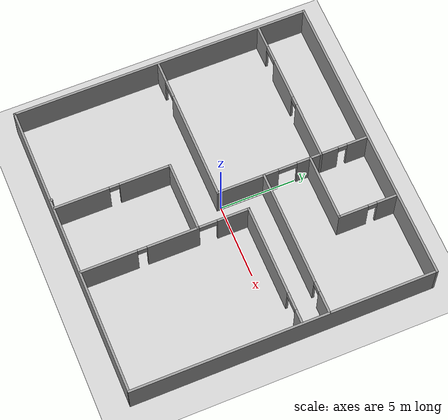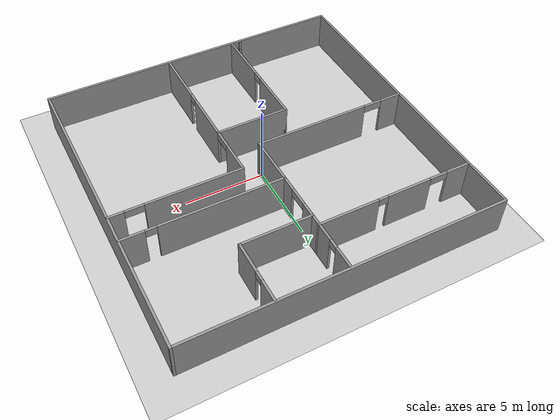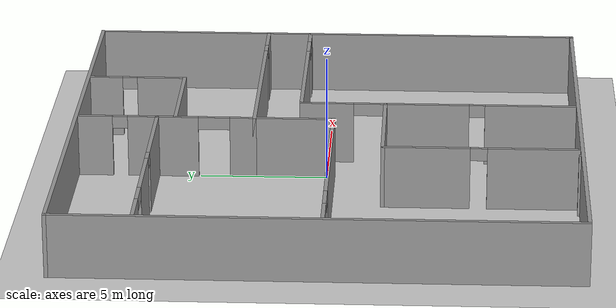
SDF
<sdf version="1.4">
  <world name="default">

    <gravity>0 0 -9.8</gravity>

    <physics name="custom_physics_profile" type="ode" default="true">
      <ode>
        <solver>
          <type>quick</type>
          <iters>100</iters>
        </solver>
      </ode>
    </physics>

    <include>
        <uri>model://ground_plane</uri>
    </include>

    <include>
        <uri>model://MAPv0.9</uri>
        <pose>0 0 0 0 0 0</pose>
    </include>

  </world>
</sdf>

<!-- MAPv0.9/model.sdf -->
<sdf version='1.6'>
  <model name='MAPv0.9'>
    <pose frame=''>-3.0494 -0.781174 0 0 -0 0</pose>
    <link name='Wall_11'>
      <pose frame=''>-4.89299 6.71712 0 0 -0 0</pose>
      <visual name='Wall_11_Visual_0'>
        <pose frame=''>-4.23368 0 1.25 0 -0 0</pose>
        <geometry>
          <box>
            <size>1.53263 0.15 2.5</size>
          </box>
        </geometry>
        <material>
          <script>
            <uri>file://media/materials/scripts/gazebo.material</uri>
            <name>Gazebo/Grey</name>
          </script>
          <ambient>1 1 1 1</ambient>
        </material>
        <meta>
          <layer>0</layer>
        </meta>
      </visual>
      <collision name='Wall_11_Collision_0'>
        <geometry>
          <box>
            <size>1.53263 0.15 2.5</size>
          </box>
        </geometry>
        <pose frame=''>-4.23368 0 1.25 0 -0 0</pose>
      </collision>
      <visual name='Wall_11_Visual_1'>
        <pose frame=''>-0.89726 0 1.25 0 -0 0</pose>
        <geometry>
          <box>
            <size>2.85749 0.15 2.5</size>
          </box>
        </geometry>
        <material>
          <script>
            <uri>file://media/materials/scripts/gazebo.material</uri>
            <name>Gazebo/Grey</name>
          </script>
          <ambient>1 1 1 1</ambient>
        </material>
        <meta>
          <layer>0</layer>
        </meta>
      </visual>
      <collision name='Wall_11_Collision_1'>
        <geometry>
          <box>
            <size>2.85749 0.15 2.5</size>
          </box>
        </geometry>
        <pose frame=''>-0.89726 0 1.25 0 -0 0</pose>
      </collision>
      <visual name='Wall_11_Visual_2'>
        <pose frame=''>3.06864 0 1.25 0 -0 0</pose>
        <geometry>
          <box>
            <size>3.86273 0.15 2.5</size>
          </box>
        </geometry>
        <material>
          <script>
            <uri>file://media/materials/scripts/gazebo.material</uri>
            <name>Gazebo/Grey</name>
          </script>
          <ambient>1 1 1 1</ambient>
        </material>
        <meta>
          <layer>0</layer>
        </meta>
      </visual>
      <collision name='Wall_11_Collision_2'>
        <geometry>
          <box>
            <size>3.86273 0.15 2.5</size>
          </box>
        </geometry>
        <pose frame=''>3.06864 0 1.25 0 -0 0</pose>
      </collision>
      <visual name='Wall_11_Visual_3'>
        <pose frame=''>-2.89669 0 2.25 0 -0 0</pose>
        <geometry>
          <box>
            <size>1.14136 0.15 0.5</size>
          </box>
        </geometry>
        <material>
          <script>
            <uri>file://media/materials/scripts/gazebo.material</uri>
            <name>Gazebo/Grey</name>
          </script>
          <ambient>1 1 1 1</ambient>
        </material>
        <meta>
          <layer>0</layer>
        </meta>
      </visual>
      <collision name='Wall_11_Collision_3'>
        <geometry>
          <box>
            <size>1.14136 0.15 0.5</size>
          </box>
        </geometry>
        <pose frame=''>-2.89669 0 2.25 0 -0 0</pose>
      </collision>
      <visual name='Wall_11_Visual_4'>
        <pose frame=''>0.834381 0 2.25 0 -0 0</pose>
        <geometry>
          <box>
            <size>0.605789 0.15 0.5</size>
          </box>
        </geometry>
        <material>
          <script>
            <uri>file://media/materials/scripts/gazebo.material</uri>
            <name>Gazebo/Grey</name>
          </script>
          <ambient>1 1 1 1</ambient>
        </material>
        <meta>
          <layer>0</layer>
        </meta>
      </visual>
      <collision name='Wall_11_Collision_4'>
        <geometry>
          <box>
            <size>0.605789 0.15 0.5</size>
          </box>
        </geometry>
        <pose frame=''>0.834381 0 2.25 0 -0 0</pose>
      </collision>
    </link>
    <link name='Wall_16'>
      <pose frame=''>0.032005 8.26712 0 0 -0 1.5708</pose>
      <visual name='Wall_16_Visual_0'>
        <pose frame=''>-1.00368 0 1.25 0 -0 0</pose>
        <geometry>
          <box>
            <size>1.24265 0.15 2.5</size>
          </box>
        </geometry>
        <material>
          <script>
            <uri>file://media/materials/scripts/gazebo.material</uri>
            <name>Gazebo/Grey</name>
          </script>
          <ambient>1 1 1 1</ambient>
        </material>
        <meta>
          <layer>0</layer>
        </meta>
      </visual>
      <collision name='Wall_16_Collision_0'>
        <geometry>
          <box>
            <size>1.24265 0.15 2.5</size>
          </box>
        </geometry>
        <pose frame=''>-1.00368 0 1.25 0 -0 0</pose>
      </collision>
      <visual name='Wall_16_Visual_1'>
        <pose frame=''>0.920473 0 1.25 0 -0 0</pose>
        <geometry>
          <box>
            <size>1.40905 0.15 2.5</size>
          </box>
        </geometry>
        <material>
          <script>
            <uri>file://media/materials/scripts/gazebo.material</uri>
            <name>Gazebo/Grey</name>
          </script>
          <ambient>1 1 1 1</ambient>
        </material>
        <meta>
          <layer>0</layer>
        </meta>
      </visual>
      <collision name='Wall_16_Collision_1'>
        <geometry>
          <box>
            <size>1.40905 0.15 2.5</size>
          </box>
        </geometry>
        <pose frame=''>0.920473 0 1.25 0 -0 0</pose>
      </collision>
      <visual name='Wall_16_Visual_2'>
        <pose frame=''>-0.083203 0 2.25 0 -0 0</pose>
        <geometry>
          <box>
            <size>0.598296 0.15 0.5</size>
          </box>
        </geometry>
        <material>
          <script>
            <uri>file://media/materials/scripts/gazebo.material</uri>
            <name>Gazebo/Grey</name>
          </script>
          <ambient>1 1 1 1</ambient>
        </material>
        <meta>
          <layer>0</layer>
        </meta>
      </visual>
      <collision name='Wall_16_Collision_2'>
        <geometry>
          <box>
            <size>0.598296 0.15 0.5</size>
          </box>
        </geometry>
        <pose frame=''>-0.083203 0 2.25 0 -0 0</pose>
      </collision>
    </link>
    <link name='Wall_18'>
      <pose frame=''>0.032005 4.79212 0 0 -0 -1.5708</pose>
      <visual name='Wall_18_Visual_0'>
        <pose frame=''>-1.14588 0 1.25 0 -0 0</pose>
        <geometry>
          <box>
            <size>1.70825 0.15 2.5</size>
          </box>
        </geometry>
        <material>
          <script>
            <uri>file://media/materials/scripts/gazebo.material</uri>
            <name>Gazebo/Grey</name>
          </script>
          <ambient>1 1 1 1</ambient>
        </material>
        <meta>
          <layer>0</layer>
        </meta>
      </visual>
      <collision name='Wall_18_Collision_0'>
        <geometry>
          <box>
            <size>1.70825 0.15 2.5</size>
          </box>
        </geometry>
        <pose frame=''>-1.14588 0 1.25 0 -0 0</pose>
      </collision>
      <visual name='Wall_18_Visual_1'>
        <pose frame=''>1.47509 0 1.25 0 -0 0</pose>
        <geometry>
          <box>
            <size>1.04982 0.15 2.5</size>
          </box>
        </geometry>
        <material>
          <script>
            <uri>file://media/materials/scripts/gazebo.material</uri>
            <name>Gazebo/Grey</name>
          </script>
          <ambient>1 1 1 1</ambient>
        </material>
        <meta>
          <layer>0</layer>
        </meta>
      </visual>
      <collision name='Wall_18_Collision_1'>
        <geometry>
          <box>
            <size>1.04982 0.15 2.5</size>
          </box>
        </geometry>
        <pose frame=''>1.47509 0 1.25 0 -0 0</pose>
      </collision>
      <visual name='Wall_18_Visual_2'>
        <pose frame=''>0.329213 0 2.25 0 -0 0</pose>
        <geometry>
          <box>
            <size>1.24193 0.15 0.5</size>
          </box>
        </geometry>
        <material>
          <script>
            <uri>file://media/materials/scripts/gazebo.material</uri>
            <name>Gazebo/Grey</name>
          </script>
          <ambient>1 1 1 1</ambient>
        </material>
        <meta>
          <layer>0</layer>
        </meta>
      </visual>
      <collision name='Wall_18_Collision_2'>
        <geometry>
          <box>
            <size>1.24193 0.15 0.5</size>
          </box>
        </geometry>
        <pose frame=''>0.329213 0 2.25 0 -0 0</pose>
      </collision>
    </link>
    <link name='Wall_19'>
      <pose frame=''>4.957 2.86712 0 0 -0 0</pose>
      <visual name='Wall_19_Visual_0'>
        <pose frame=''>-1.09816 0 1.25 0 -0 0</pose>
        <geometry>
          <box>
            <size>7.80368 0.15 2.5</size>
          </box>
        </geometry>
        <material>
          <script>
            <uri>file://media/materials/scripts/gazebo.material</uri>
            <name>Gazebo/Grey</name>
          </script>
          <ambient>1 1 1 1</ambient>
        </material>
        <meta>
          <layer>0</layer>
        </meta>
      </visual>
      <collision name='Wall_19_Collision_0'>
        <geometry>
          <box>
            <size>7.80368 0.15 2.5</size>
          </box>
        </geometry>
        <pose frame=''>-1.09816 0 1.25 0 -0 0</pose>
      </collision>
      <visual name='Wall_19_Visual_1'>
        <pose frame=''>4.24478 0 1.25 0 -0 0</pose>
        <geometry>
          <box>
            <size>1.51045 0.15 2.5</size>
          </box>
        </geometry>
        <material>
          <script>
            <uri>file://media/materials/scripts/gazebo.material</uri>
            <name>Gazebo/Grey</name>
          </script>
          <ambient>1 1 1 1</ambient>
        </material>
        <meta>
          <layer>0</layer>
        </meta>
      </visual>
      <collision name='Wall_19_Collision_1'>
        <geometry>
          <box>
            <size>1.51045 0.15 2.5</size>
          </box>
        </geometry>
        <pose frame=''>4.24478 0 1.25 0 -0 0</pose>
      </collision>
      <visual name='Wall_19_Visual_2'>
        <pose frame=''>3.14662 0 2.25 0 -0 0</pose>
        <geometry>
          <box>
            <size>0.685868 0.15 0.5</size>
          </box>
        </geometry>
        <material>
          <script>
            <uri>file://media/materials/scripts/gazebo.material</uri>
            <name>Gazebo/Grey</name>
          </script>
          <ambient>1 1 1 1</ambient>
        </material>
        <meta>
          <layer>0</layer>
        </meta>
      </visual>
      <collision name='Wall_19_Collision_2'>
        <geometry>
          <box>
            <size>0.685868 0.15 0.5</size>
          </box>
        </geometry>
        <pose frame=''>3.14662 0 2.25 0 -0 0</pose>
      </collision>
    </link>
    <link name='Wall_29'>
      <pose frame=''>4.39763 7.91653 0 0 -0 1.5708</pose>
      <visual name='Wall_29_Visual_0'>
        <pose frame=''>-0.995771 0 1.25 0 -0 0</pose>
        <geometry>
          <box>
            <size>2.00846 0.15 2.5</size>
          </box>
        </geometry>
        <material>
          <script>
            <uri>file://media/materials/scripts/gazebo.material</uri>
            <name>Gazebo/Grey</name>
          </script>
          <ambient>1 1 1 1</ambient>
        </material>
        <meta>
          <layer>0</layer>
        </meta>
      </visual>
      <collision name='Wall_29_Collision_0'>
        <geometry>
          <box>
            <size>2.00846 0.15 2.5</size>
          </box>
        </geometry>
        <pose frame=''>-0.995771 0 1.25 0 -0 0</pose>
      </collision>
      <visual name='Wall_29_Visual_1'>
        <pose frame=''>1.30338 0 1.25 0 -0 0</pose>
        <geometry>
          <box>
            <size>1.39325 0.15 2.5</size>
          </box>
        </geometry>
        <material>
          <script>
            <uri>file://media/materials/scripts/gazebo.material</uri>
            <name>Gazebo/Grey</name>
          </script>
          <ambient>1 1 1 1</ambient>
        </material>
        <meta>
          <layer>0</layer>
        </meta>
      </visual>
      <collision name='Wall_29_Collision_1'>
        <geometry>
          <box>
            <size>1.39325 0.15 2.5</size>
          </box>
        </geometry>
        <pose frame=''>1.30338 0 1.25 0 -0 0</pose>
      </collision>
      <visual name='Wall_29_Visual_2'>
        <pose frame=''>0.307607 0 2.25 0 -0 0</pose>
        <geometry>
          <box>
            <size>0.598296 0.15 0.5</size>
          </box>
        </geometry>
        <material>
          <script>
            <uri>file://media/materials/scripts/gazebo.material</uri>
            <name>Gazebo/Grey</name>
          </script>
          <ambient>1 1 1 1</ambient>
        </material>
        <meta>
          <layer>0</layer>
        </meta>
      </visual>
      <collision name='Wall_29_Collision_2'>
        <geometry>
          <box>
            <size>0.598296 0.15 0.5</size>
          </box>
        </geometry>
        <pose frame=''>0.307607 0 2.25 0 -0 0</pose>
      </collision>
    </link>
    <link name='Wall_33'>
      <collision name='Wall_33_Collision'>
        <geometry>
          <box>
            <size>4.5 0.15 2.5</size>
          </box>
        </geometry>
        <pose frame=''>0 0 1.25 0 -0 0</pose>
      </collision>
      <visual name='Wall_33_Visual'>
        <pose frame=''>0 0 1.25 0 -0 0</pose>
        <geometry>
          <box>
            <size>4.5 0.15 2.5</size>
          </box>
        </geometry>
        <material>
          <script>
            <uri>file://media/materials/scripts/gazebo.material</uri>
            <name>Gazebo/Grey</name>
          </script>
          <ambient>1 1 1 1</ambient>
        </material>
        <meta>
          <layer>0</layer>
        </meta>
      </visual>
      <pose frame=''>2.22263 5.99153 0 0 -0 3.14159</pose>
    </link>
    <link name='Wall_44'>
      <collision name='Wall_44_Collision'>
        <geometry>
          <box>
            <size>3.25 0.15 2.5</size>
          </box>
        </geometry>
        <pose frame=''>0 0 1.25 0 -0 0</pose>
      </collision>
      <visual name='Wall_44_Visual'>
        <pose frame=''>0 0 1.25 0 -0 0</pose>
        <geometry>
          <box>
            <size>3.25 0.15 2.5</size>
          </box>
        </geometry>
        <material>
          <script>
            <uri>file://media/materials/scripts/gazebo.material</uri>
            <name>Gazebo/Grey</name>
          </script>
          <ambient>1 1 1 1</ambient>
        </material>
        <meta>
          <layer>0</layer>
        </meta>
      </visual>
      <pose frame=''>0.032005 1.31712 0 0 -0 -1.5708</pose>
    </link>
    <link name='Wall_49'>
      <collision name='Wall_49_Collision'>
        <geometry>
          <box>
            <size>0.15 0.15 2.5</size>
          </box>
        </geometry>
        <pose frame=''>0 0 1.25 0 -0 0</pose>
      </collision>
      <visual name='Wall_49_Visual'>
        <pose frame=''>0 0 1.25 0 -0 0</pose>
        <geometry>
          <box>
            <size>0.15 0.15 2.5</size>
          </box>
        </geometry>
        <material>
          <script>
            <uri>file://media/materials/scripts/gazebo.material</uri>
            <name>Gazebo/Grey</name>
          </script>
          <ambient>1 1 1 1</ambient>
        </material>
        <meta>
          <layer>0</layer>
        </meta>
      </visual>
      <pose frame=''>-3.40579 -9.84113 0 0 -0 0</pose>
    </link>
    <link name='Wall_52'>
      <pose frame=''>-4.89299 -0.232884 0 0 -0 3.14159</pose>
      <visual name='Wall_52_Visual_0'>
        <pose frame=''>-1.30044 0 1.25 0 -0 0</pose>
        <geometry>
          <box>
            <size>7.39912 0.15 2.5</size>
          </box>
        </geometry>
        <material>
          <script>
            <uri>file://media/materials/scripts/gazebo.material</uri>
            <name>Gazebo/Grey</name>
          </script>
          <ambient>1 1 1 1</ambient>
        </material>
        <meta>
          <layer>0</layer>
        </meta>
      </visual>
      <collision name='Wall_52_Collision_0'>
        <geometry>
          <box>
            <size>7.39912 0.15 2.5</size>
          </box>
        </geometry>
        <pose frame=''>-1.30044 0 1.25 0 -0 0</pose>
      </collision>
      <visual name='Wall_52_Visual_1'>
        <pose frame=''>4.30251 0 1.25 0 -0 0</pose>
        <geometry>
          <box>
            <size>1.39498 0.15 2.5</size>
          </box>
        </geometry>
        <material>
          <script>
            <uri>file://media/materials/scripts/gazebo.material</uri>
            <name>Gazebo/Grey</name>
          </script>
          <ambient>1 1 1 1</ambient>
        </material>
        <meta>
          <layer>0</layer>
        </meta>
      </visual>
      <collision name='Wall_52_Collision_1'>
        <geometry>
          <box>
            <size>1.39498 0.15 2.5</size>
          </box>
        </geometry>
        <pose frame=''>4.30251 0 1.25 0 -0 0</pose>
      </collision>
      <visual name='Wall_52_Visual_2'>
        <pose frame=''>3.00207 0 2.25 0 -0 0</pose>
        <geometry>
          <box>
            <size>1.2059 0.15 0.5</size>
          </box>
        </geometry>
        <material>
          <script>
            <uri>file://media/materials/scripts/gazebo.material</uri>
            <name>Gazebo/Grey</name>
          </script>
          <ambient>1 1 1 1</ambient>
        </material>
        <meta>
          <layer>0</layer>
        </meta>
      </visual>
      <collision name='Wall_52_Collision_2'>
        <geometry>
          <box>
            <size>1.2059 0.15 0.5</size>
          </box>
        </geometry>
        <pose frame=''>3.00207 0 2.25 0 -0 0</pose>
      </collision>
    </link>
    <link name='Wall_54'>
      <pose frame=''>5.82786 1.10047 0 0 -0 3.14159</pose>
      <visual name='Wall_54_Visual_0'>
        <pose frame=''>-3.63187 0 1.25 0 -0 0</pose>
        <geometry>
          <box>
            <size>0.986265 0.15 2.5</size>
          </box>
        </geometry>
        <material>
          <script>
            <uri>file://media/materials/scripts/gazebo.material</uri>
            <name>Gazebo/Grey</name>
          </script>
          <ambient>1 1 1 1</ambient>
        </material>
        <meta>
          <layer>0</layer>
        </meta>
      </visual>
      <collision name='Wall_54_Collision_0'>
        <geometry>
          <box>
            <size>0.986265 0.15 2.5</size>
          </box>
        </geometry>
        <pose frame=''>-3.63187 0 1.25 0 -0 0</pose>
      </collision>
      <visual name='Wall_54_Visual_1'>
        <pose frame=''>1.08079 0 1.25 0 -0 0</pose>
        <geometry>
          <box>
            <size>6.08842 0.15 2.5</size>
          </box>
        </geometry>
        <material>
          <script>
            <uri>file://media/materials/scripts/gazebo.material</uri>
            <name>Gazebo/Grey</name>
          </script>
          <ambient>1 1 1 1</ambient>
        </material>
        <meta>
          <layer>0</layer>
        </meta>
      </visual>
      <collision name='Wall_54_Collision_1'>
        <geometry>
          <box>
            <size>6.08842 0.15 2.5</size>
          </box>
        </geometry>
        <pose frame=''>1.08079 0 1.25 0 -0 0</pose>
      </collision>
      <visual name='Wall_54_Visual_2'>
        <pose frame=''>-2.55108 0 2.25 0 -0 0</pose>
        <geometry>
          <box>
            <size>1.17531 0.15 0.5</size>
          </box>
        </geometry>
        <material>
          <script>
            <uri>file://media/materials/scripts/gazebo.material</uri>
            <name>Gazebo/Grey</name>
          </script>
          <ambient>1 1 1 1</ambient>
        </material>
        <meta>
          <layer>0</layer>
        </meta>
      </visual>
      <collision name='Wall_54_Collision_2'>
        <geometry>
          <box>
            <size>1.17531 0.15 0.5</size>
          </box>
        </geometry>
        <pose frame=''>-2.55108 0 2.25 0 -0 0</pose>
      </collision>
    </link>
    <link name='Wall_56'>
      <pose frame=''>1.77786 -0.574529 0 0 -0 1.5708</pose>
      <visual name='Wall_56_Visual_0'>
        <pose frame=''>-1.68495 0 1.25 0 -0 0</pose>
        <geometry>
          <box>
            <size>0.130109 0.15 2.5</size>
          </box>
        </geometry>
        <material>
          <script>
            <uri>file://media/materials/scripts/gazebo.material</uri>
            <name>Gazebo/Grey</name>
          </script>
          <ambient>1 1 1 1</ambient>
        </material>
        <meta>
          <layer>0</layer>
        </meta>
      </visual>
      <collision name='Wall_56_Collision_0'>
        <geometry>
          <box>
            <size>0.130109 0.15 2.5</size>
          </box>
        </geometry>
        <pose frame=''>-1.68495 0 1.25 0 -0 0</pose>
      </collision>
      <visual name='Wall_56_Visual_1'>
        <pose frame=''>0.668006 0 1.25 0 -0 0</pose>
        <geometry>
          <box>
            <size>2.16399 0.15 2.5</size>
          </box>
        </geometry>
        <material>
          <script>
            <uri>file://media/materials/scripts/gazebo.material</uri>
            <name>Gazebo/Grey</name>
          </script>
          <ambient>1 1 1 1</ambient>
        </material>
        <meta>
          <layer>0</layer>
        </meta>
      </visual>
      <collision name='Wall_56_Collision_1'>
        <geometry>
          <box>
            <size>2.16399 0.15 2.5</size>
          </box>
        </geometry>
        <pose frame=''>0.668006 0 1.25 0 -0 0</pose>
      </collision>
      <visual name='Wall_56_Visual_2'>
        <pose frame=''>-1.01694 0 2.25 0 -0 0</pose>
        <geometry>
          <box>
            <size>1.2059 0.15 0.5</size>
          </box>
        </geometry>
        <material>
          <script>
            <uri>file://media/materials/scripts/gazebo.material</uri>
            <name>Gazebo/Grey</name>
          </script>
          <ambient>1 1 1 1</ambient>
        </material>
        <meta>
          <layer>0</layer>
        </meta>
      </visual>
      <collision name='Wall_56_Collision_2'>
        <geometry>
          <box>
            <size>1.2059 0.15 0.5</size>
          </box>
        </geometry>
        <pose frame=''>-1.01694 0 2.25 0 -0 0</pose>
      </collision>
    </link>
    <link name='Wall_58'>
      <collision name='Wall_58_Collision'>
        <geometry>
          <box>
            <size>4.75 0.15 2.5</size>
          </box>
        </geometry>
        <pose frame=''>0 0 1.25 0 -0 0</pose>
      </collision>
      <visual name='Wall_58_Visual'>
        <pose frame=''>0 0 1.25 0 -0 0</pose>
        <geometry>
          <box>
            <size>4.75 0.15 2.5</size>
          </box>
        </geometry>
        <material>
          <script>
            <uri>file://media/materials/scripts/gazebo.material</uri>
            <name>Gazebo/Grey</name>
          </script>
          <ambient>1 1 1 1</ambient>
        </material>
        <meta>
          <layer>0</layer>
        </meta>
      </visual>
      <pose frame=''>-0.522144 -2.24953 0 0 -0 3.14159</pose>
    </link>
    <link name='Wall_59'>
      <pose frame=''>-2.82214 -6.04953 0 0 -0 -1.5708</pose>
      <visual name='Wall_59_Visual_0'>
        <pose frame=''>-2.1508 0 1.25 0 -0 0</pose>
        <geometry>
          <box>
            <size>3.44841 0.15 2.5</size>
          </box>
        </geometry>
        <material>
          <script>
            <uri>file://media/materials/scripts/gazebo.material</uri>
            <name>Gazebo/Grey</name>
          </script>
          <ambient>1 1 1 1</ambient>
        </material>
        <meta>
          <layer>0</layer>
        </meta>
      </visual>
      <collision name='Wall_59_Collision_0'>
        <geometry>
          <box>
            <size>3.44841 0.15 2.5</size>
          </box>
        </geometry>
        <pose frame=''>-2.1508 0 1.25 0 -0 0</pose>
      </collision>
      <visual name='Wall_59_Visual_1'>
        <pose frame=''>2.05184 0 1.25 0 -0 0</pose>
        <geometry>
          <box>
            <size>3.64631 0.15 2.5</size>
          </box>
        </geometry>
        <material>
          <script>
            <uri>file://media/materials/scripts/gazebo.material</uri>
            <name>Gazebo/Grey</name>
          </script>
          <ambient>1 1 1 1</ambient>
        </material>
        <meta>
          <layer>0</layer>
        </meta>
      </visual>
      <collision name='Wall_59_Collision_1'>
        <geometry>
          <box>
            <size>3.64631 0.15 2.5</size>
          </box>
        </geometry>
        <pose frame=''>2.05184 0 1.25 0 -0 0</pose>
      </collision>
      <visual name='Wall_59_Visual_2'>
        <pose frame=''>-0.098952 0 2.25 0 -0 0</pose>
        <geometry>
          <box>
            <size>0.655278 0.15 0.5</size>
          </box>
        </geometry>
        <material>
          <script>
            <uri>file://media/materials/scripts/gazebo.material</uri>
            <name>Gazebo/Grey</name>
          </script>
          <ambient>1 1 1 1</ambient>
        </material>
        <meta>
          <layer>0</layer>
        </meta>
      </visual>
      <collision name='Wall_59_Collision_2'>
        <geometry>
          <box>
            <size>0.655278 0.15 0.5</size>
          </box>
        </geometry>
        <pose frame=''>-0.098952 0 2.25 0 -0 0</pose>
      </collision>
    </link>
    <link name='Wall_6'>
      <collision name='Wall_6_Collision'>
        <geometry>
          <box>
            <size>20 0.15 2.5</size>
          </box>
        </geometry>
        <pose frame=''>0 0 1.25 0 -0 0</pose>
      </collision>
      <visual name='Wall_6_Visual'>
        <pose frame=''>0 0 1.25 0 -0 0</pose>
        <geometry>
          <box>
            <size>20 0.15 2.5</size>
          </box>
        </geometry>
        <material>
          <script>
            <uri>file://media/materials/scripts/gazebo.material</uri>
            <name>Gazebo/Grey</name>
          </script>
          <ambient>1 1 1 1</ambient>
        </material>
        <meta>
          <layer>0</layer>
        </meta>
      </visual>
      <pose frame=''>-9.925 0 0 0 -0 -1.5708</pose>
    </link>
    <link name='Wall_61'>
      <pose frame=''>1.77786 -6.04953 0 0 -0 -1.5708</pose>
      <visual name='Wall_61_Visual_0'>
        <pose frame=''>-2.16609 0 1.25 0 -0 0</pose>
        <geometry>
          <box>
            <size>3.41782 0.15 2.5</size>
          </box>
        </geometry>
        <material>
          <script>
            <uri>file://media/materials/scripts/gazebo.material</uri>
            <name>Gazebo/Grey</name>
          </script>
          <ambient>1 1 1 1</ambient>
        </material>
        <meta>
          <layer>0</layer>
        </meta>
      </visual>
      <collision name='Wall_61_Collision_0'>
        <geometry>
          <box>
            <size>3.41782 0.15 2.5</size>
          </box>
        </geometry>
        <pose frame=''>-2.16609 0 1.25 0 -0 0</pose>
      </collision>
      <visual name='Wall_61_Visual_1'>
        <pose frame=''>2.02125 0 1.25 0 -0 0</pose>
        <geometry>
          <box>
            <size>3.70749 0.15 2.5</size>
          </box>
        </geometry>
        <material>
          <script>
            <uri>file://media/materials/scripts/gazebo.material</uri>
            <name>Gazebo/Grey</name>
          </script>
          <ambient>1 1 1 1</ambient>
        </material>
        <meta>
          <layer>0</layer>
        </meta>
      </visual>
      <collision name='Wall_61_Collision_1'>
        <geometry>
          <box>
            <size>3.70749 0.15 2.5</size>
          </box>
        </geometry>
        <pose frame=''>2.02125 0 1.25 0 -0 0</pose>
      </collision>
      <visual name='Wall_61_Visual_2'>
        <pose frame=''>-0.144838 0 2.25 0 -0 0</pose>
        <geometry>
          <box>
            <size>0.624688 0.15 0.5</size>
          </box>
        </geometry>
        <material>
          <script>
            <uri>file://media/materials/scripts/gazebo.material</uri>
            <name>Gazebo/Grey</name>
          </script>
          <ambient>1 1 1 1</ambient>
        </material>
        <meta>
          <layer>0</layer>
        </meta>
      </visual>
      <collision name='Wall_61_Collision_2'>
        <geometry>
          <box>
            <size>0.624688 0.15 0.5</size>
          </box>
        </geometry>
        <pose frame=''>-0.144838 0 2.25 0 -0 0</pose>
      </collision>
    </link>
    <link name='Wall_7'>
      <collision name='Wall_7_Collision'>
        <geometry>
          <box>
            <size>20 0.15 2.5</size>
          </box>
        </geometry>
        <pose frame=''>0 0 1.25 0 -0 0</pose>
      </collision>
      <visual name='Wall_7_Visual'>
        <pose frame=''>0 0 1.25 0 -0 0</pose>
        <geometry>
          <box>
            <size>20 0.15 2.5</size>
          </box>
        </geometry>
        <material>
          <script>
            <uri>file://media/materials/scripts/gazebo.material</uri>
            <name>Gazebo/Grey</name>
          </script>
          <ambient>1 1 1 1</ambient>
        </material>
        <meta>
          <layer>0</layer>
        </meta>
      </visual>
      <pose frame=''>-0 -9.925 0 0 -0 0</pose>
    </link>
    <link name='Wall_8'>
      <collision name='Wall_8_Collision'>
        <geometry>
          <box>
            <size>20 0.15 2.5</size>
          </box>
        </geometry>
        <pose frame=''>0 0 1.25 0 -0 0</pose>
      </collision>
      <visual name='Wall_8_Visual'>
        <pose frame=''>0 0 1.25 0 -0 0</pose>
        <geometry>
          <box>
            <size>20 0.15 2.5</size>
          </box>
        </geometry>
        <material>
          <script>
            <uri>file://media/materials/scripts/gazebo.material</uri>
            <name>Gazebo/Grey</name>
          </script>
          <ambient>1 1 1 1</ambient>
        </material>
        <meta>
          <layer>0</layer>
        </meta>
      </visual>
      <pose frame=''>9.925 0 0 0 -0 1.5708</pose>
    </link>
    <link name='Wall_9'>
      <collision name='Wall_9_Collision'>
        <geometry>
          <box>
            <size>20 0.15 2.5</size>
          </box>
        </geometry>
        <pose frame=''>0 0 1.25 0 -0 0</pose>
      </collision>
      <visual name='Wall_9_Visual'>
        <pose frame=''>0 0 1.25 0 -0 0</pose>
        <geometry>
          <box>
            <size>20 0.15 2.5</size>
          </box>
        </geometry>
        <material>
          <script>
            <uri>file://media/materials/scripts/gazebo.material</uri>
            <name>Gazebo/Grey</name>
          </script>
          <ambient>1 1 1 1</ambient>
        </material>
        <meta>
          <layer>0</layer>
        </meta>
      </visual>
      <pose frame=''>-0 9.925 0 0 -0 3.14159</pose>
    </link>
    <static>1</static>
  </model>
</sdf>
